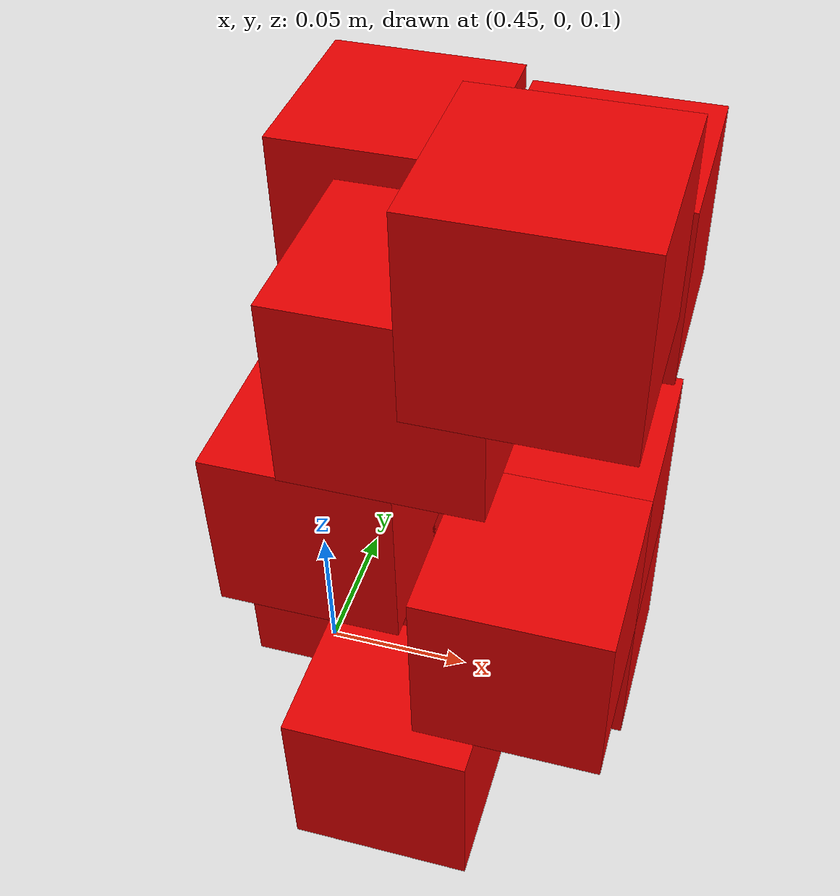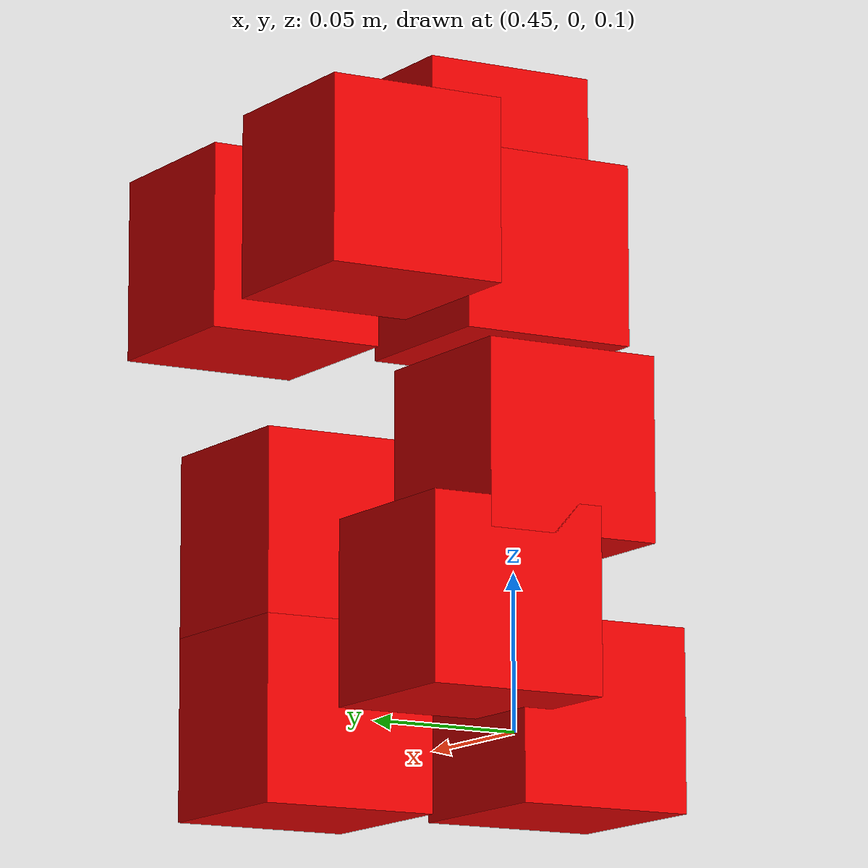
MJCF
<mujoco>
    <worldbody>
        <body pos="0.53 0.03 0.17">
            <joint type="free"/>
            <geom type="box" condim = "6" friction = "3 1 .005" size="0.03 0.03 0.03" rgba="0.9 0 0 1"/>
        </body>
        <body pos="0.49 -0.02 0.26">
            <joint type="free"/>
            <geom type="box" condim = "6" friction = "3 1 .005" size="0.03 0.03 0.03" rgba="0.9 0 0 1"/>
        </body>
        <body pos="0.46 0.01 0.14">
            <joint type="free"/>
            <geom type="box" condim = "6" friction = "3 1 .005" size="0.03 0.03 0.03" rgba="0.9 0 0 1"/>
        </body>
        <body pos="0.53 0.05 0.26">
            <joint type="free"/>
            <geom type="box" condim = "6" friction = "3 1 .005" size="0.03 0.03 0.03" rgba="0.9 0 0 1"/>
        </body>
        <body pos="0.46 -0.01 0.19">
            <joint type="free"/>
            <geom type="box" condim = "6" friction = "3 1 .005" size="0.03 0.03 0.03" rgba="0.9 0 0 1"/>
        </body>
        <body pos="0.53 -0.03 0.17">
            <joint type="free"/>
            <geom type="box" condim = "6" friction = "3 1 .005" size="0.03 0.03 0.03" rgba="0.9 0 0 1"/>
        </body>
        <body pos="0.49 -0.04 0.11">
            <joint type="free"/>
            <geom type="box" condim = "6" friction = "3 1 .005" size="0.03 0.03 0.03" rgba="0.9 0 0 1"/>
        </body>
        <body pos="0.53 0.03 0.11">
            <joint type="free"/>
            <geom type="box" condim = "6" friction = "3 1 .005" size="0.03 0.03 0.03" rgba="0.9 0 0 1"/>
        </body>
        <body pos="0.47 0.04 0.27">
            <joint type="free"/>
            <geom type="box" condim = "6" friction = "3 1 .005" size="0.03 0.03 0.03" rgba="0.9 0 0 1"/>
        </body>
        <body pos="0.53 -0.03 0.3">
            <joint type="free"/>
            <geom type="box" condim = "6" friction = "3 1 .005" size="0.03 0.03 0.03" rgba="0.9 0 0 1"/>
        </body>
    </worldbody>
</mujoco>
